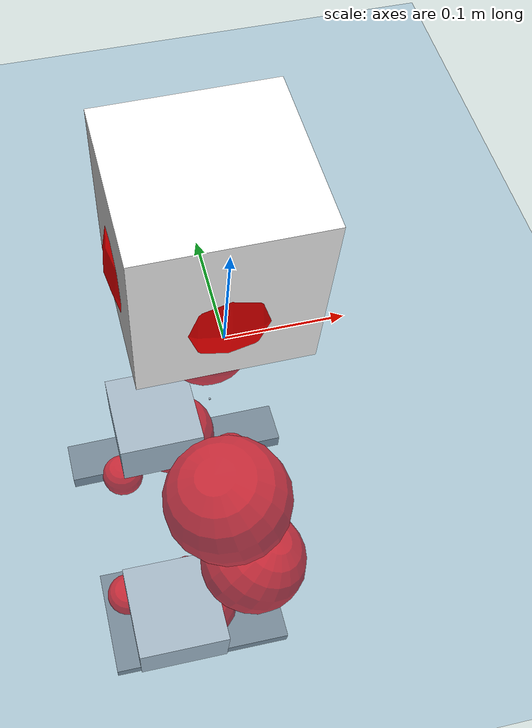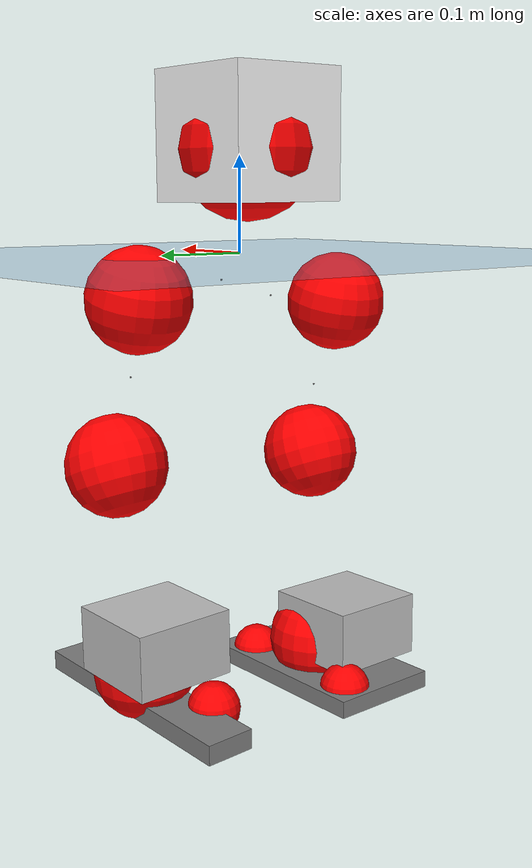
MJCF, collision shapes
<mujoco model="pi_12dof_release_v1">
  <compiler angle="radian" assetdir="assets" balanceinertia="true" inertiafromgeom="false"/>

  <option timestep="0.005" density="1.2" viscosity="2e-05"/>

  <size nkey="1"/>

  <visual>
    <quality shadowsize="8192"/>
    <map shadowclip="0.5"/>
  </visual>

  <default>
    <default class="/">
      <joint armature="0.01" damping="0.01" frictionloss="0.01"/>
      <geom contype="0" conaffinity="0" group="1" solref="-1000 -80"/>
      <site size="0.01 0.005 0.005" group="5"/>
      <general forcelimited="true" biastype="affine" gainprm="20" biasprm="0 -20 -0.5"/>
      <default class="foot">
        <geom size="0.0845 0.036 0.005" type="box" condim="6" group="4" priority="1" friction="0.9 0.2 0.2" solimp="0.015 1 0.005"/>
      </default>
      <default class="reward_collision_sphere">
        <geom group="5" rgba="1 0 0 1"/>
      </default>
    </default>
  </default>

  <asset>
    <texture type="skybox" colorspace="auto" name="//unnamed_texture_0" builtin="gradient" rgb1="0.95 0.95 0.95" rgb2="0.95 0.95 0.95" width="100" height="600"/>
    <texture type="2d" colorspace="auto" name="texplane" builtin="checker" rgb1="0.345 0.575 0.748" rgb2="0.345 0.575 0.748" markrgb="1 1 1" width="512" height="512"/>
    <material name="MatPlane" class="/" texture="texplane" texuniform="true" texrepeat="2 2" specular="0.9"/>
    <mesh name="baselink_1" class="/" file="baselink_1.STL"/>
    <mesh name="r_hip_pitch_link" class="/" file="r_hip_pitch_link.STL"/>
    <mesh name="r_hip_roll_link" class="/" file="r_hip_roll_link.STL"/>
    <mesh name="r_thigh_link" class="/" file="r_thigh_link.STL"/>
    <mesh name="r_calf_link" class="/" file="r_calf_link.STL"/>
    <mesh name="r_ankle_pitch_link" class="/" file="r_ankle_pitch_link.STL"/>
    <mesh name="r_ankle_roll_link" class="/" file="r_ankle_roll_link.STL"/>
    <mesh name="l_hip_pitch_link" class="/" file="l_hip_pitch_link.STL"/>
    <mesh name="l_hip_roll_link" class="/" file="l_hip_roll_link.STL"/>
    <mesh name="l_thigh_link" class="/" file="l_thigh_link.STL"/>
    <mesh name="l_calf_link" class="/" file="l_calf_link.STL"/>
    <mesh name="l_ankle_pitch_link" class="/" file="l_ankle_pitch_link.STL"/>
    <mesh name="l_ankle_roll_link" class="/" file="l_ankle_roll_link.STL"/>
  </asset>

  <worldbody>
    <geom name="floor" class="/" size="100 100 0.125" type="plane" group="0" material="MatPlane"/>
    <light name="toplight_shadow" class="/" pos="0 0 5" dir="0.0990148 0.0990148 -0.990148" type="directional" ambient="0.04 0.04 0.04" diffuse="0.55 0.55 0.55" specular="0.12 0.12 0.12"/>
    <light name="toplight_fill" class="/" pos="0 0 5" dir="0.0990148 0.0990148 -0.990148" type="directional" castshadow="false" ambient="0.04 0.04 0.04" diffuse="0.3 0.3 0.3" specular="0.08 0.08 0.08"/>
    <body name="trunk" pos="-0.0164356 0.00218488 0.0087336" quat="0.999972 -0.0065269 -0.00170357 0.00325406">
      <inertial pos="0.018339 -0.00850459 0.0595375" quat="0.689428 0.0248951 0.0231197 0.723557" mass="5.48166" diaginertia="0.0129438 0.0645123 0.0171072"/>
      <joint name="//unnamed_joint_0" type="free"/>
      <geom name="//unnamed_geom_1" class="/" type="mesh" density="0" rgba="1 1 1 1" mesh="baselink_1"/>
      <geom name="//unnamed_geom_2" class="/" size="0.0662767 0.0662767 0.0662767" pos="0 0 0.110437" type="box" rgba="1 1 1 1"/>
      <geom name="//unnamed_geom_3" class="reward_collision_sphere" size="0.0729043" pos="0 0 0.0966325"/>
      <site name="imu" class="/" pos="0.0122586 -0.0482791 -0.0726642" size="0.0132553"/>
      <camera name="track" class="/" pos="0 -3.03097 0" quat="0.707107 0.707107 0 0" mode="trackcom"/>
      <camera name="ego_camera" class="/" pos="0.081049 0 0.248484" quat="-0.5 -0.5 0.5 0.5"/>
      <body name="r_hip_pitch_link" pos="-0.00116628 -0.029253 -0.0535002" quat="0.992614 -0.00104543 -0.121287 -0.00230149">
        <inertial pos="-0.00403663 -0.0718027 0.00316013" quat="-0.0326145 0.705078 -0.0247244 0.707948" mass="0.895736" diaginertia="0.000118953 0.000649146 0.000413292"/>
        <joint name="r_hip_pitch_joint" class="/" pos="0 0 0" axis="-0.0409385 -0.998967 0.0196975" stiffness="0.0293237" range="-1.56695 1.17114" armature="0.017949" damping="0" frictionloss="0.00524611"/>
        <geom name="//unnamed_geom_4" class="/" type="mesh" density="0" rgba="0.75294 0.75294 0.75294 1" mesh="r_hip_pitch_link"/>
        <geom name="//unnamed_geom_5" class="/" size="0.000662767 0.000662767 0.000662767" type="box" rgba="0.75294 0.75294 0.75294 1"/>
        <body name="r_hip_roll_link" pos="-0.0087905 -0.0885766 -0.00983476" quat="0.999977 -0.000162894 0.00355893 -0.00580806">
          <inertial pos="-0.0136858 0.0112051 -0.0691575" quat="0.70597 -0.0773383 -0.0808234 0.699351" mass="1.06523" diaginertia="0.000502526 0.00248325 0.000584162"/>
          <joint name="r_hip_roll_joint" class="/" pos="0 0 0" axis="-0.998165 -0.0381197 -0.0470442" range="-0.00192701 0.733981" armature="0.0180062" damping="0.0769328" frictionloss="0.00441727"/>
          <geom name="//unnamed_geom_6" class="/" type="mesh" density="0" rgba="0.75294 0.75294 0.75294 1" mesh="r_hip_roll_link"/>
          <geom name="//unnamed_geom_7" class="/" size="0.000662767 0.000662767 0.000662767" type="box" rgba="0.75294 0.75294 0.75294 1"/>
          <geom name="//unnamed_geom_8" class="reward_collision_sphere" size="0.0530213"/>
          <body name="r_thigh_link" pos="-0.00344053 0.0149333 -0.0952292" quat="0.999986 0.00421404 0.000474592 -0.00319675">
            <inertial pos="0.0131661 0.00167139 -0.0768443" quat="0.759483 0.650281 0.0175476 0.00343588" mass="0.250332" diaginertia="0.000164073 0.000516882 0.000211308"/>
            <joint name="r_thigh_joint" class="/" pos="0 0 0" axis="-0.00254204 0.000959053 -0.999996" stiffness="0.0511041" range="-0.0454744 0.388932" armature="0.0194285" damping="0" frictionloss="0.0241973"/>
            <geom name="//unnamed_geom_9" class="/" type="mesh" density="0" rgba="0.75294 0.75294 0.75294 1" mesh="r_thigh_link"/>
            <geom name="//unnamed_geom_10" class="/" size="0.000662767 0.000662767 0.000662767" type="box" rgba="0.75294 0.75294 0.75294 1"/>
            <body name="r_calf_link" pos="-0.00341036 -0.0102371 -0.0818911" quat="0.948407 -0.00260125 0.317002 0.00514491">
              <inertial pos="-0.00960498 0.0123587 -0.097005" quat="0.997751 0.0402293 -0.0415938 0.0338234" mass="1.90526" diaginertia="0.00671967 0.031469 0.00111682"/>
              <joint name="r_calf_joint" class="/" pos="0 0 0" axis="0.0400707 -0.997676 -0.0551098" stiffness="0.068869" range="-1.96877 0.71137" armature="0.016354" damping="0" frictionloss="0.00507554"/>
              <geom name="//unnamed_geom_11" class="/" type="mesh" density="0" rgba="0.75294 0.75294 0.75294 1" mesh="r_calf_link"/>
              <geom name="//unnamed_geom_12" class="/" size="0.000662767 0.000662767 0.000662767" type="box" rgba="0.75294 0.75294 0.75294 1"/>
              <geom name="//unnamed_geom_13" class="reward_collision_sphere" size="0.0530213"/>
              <body name="r_ankle_pitch_link" pos="0.000148473 0.0162309 -0.194222" quat="0.98018 0.000178189 -0.198107 -0.000102182">
                <inertial pos="-0.00473314 0.0176404 0.00269787" quat="-0.0254392 0.68664 0.036236 0.725648" mass="0.394951" diaginertia="0.000520393 0.00213481 0.000556051"/>
                <joint name="r_ankle_pitch_joint" class="/" pos="0 0 0" axis="-0.0587087 -0.997136 -0.0476788" range="-1.46851 0.495424" armature="0.0119266" damping="0.069526" frictionloss="0.00666599"/>
                <geom name="//unnamed_geom_14" class="/" type="mesh" density="0" rgba="0.75294 0.75294 0.75294 1" mesh="r_ankle_pitch_link"/>
                <geom name="//unnamed_geom_15" class="/" size="0.0516958 0.0530213 0.0331383" type="box" rgba="0.75294 0.75294 0.75294 1"/>
                <body name="r_ankle_roll_link" pos="0.0805136 0.0169738 0.00674505" quat="1 5.00158e-05 8.40409e-05 -0.000481534">
                  <inertial pos="-0.0258241 -0.00170132 -0.0206543" quat="0.53287 0.468754 0.473606 0.521553" mass="1.24503" diaginertia="0.00166822 0.008358 0.00164852"/>
                  <joint name="r_ankle_roll_joint" class="/" pos="0 0 0" axis="-0.996884 -0.0105971 -0.078172" range="0.145958 0.11257" armature="0.00397855" damping="0.0224254" frictionloss="0.013345"/>
                  <geom name="//unnamed_geom_16" class="/" type="mesh" density="0" rgba="0.75294 0.75294 0.75294 1" mesh="r_ankle_roll_link"/>
                  <geom name="//unnamed_geom_17" class="/" type="mesh" rgba="0.75294 0.75294 0.75294 1" mesh="r_ankle_roll_link"/>
                  <geom name="right_foot" class="foot" size="0.105261 0.0613182 0.00901824" pos="-0.0551133 0 -0.0607404"/>
                  <geom name="//unnamed_geom_19" class="reward_collision_sphere" size="0.0530213" pos="-0.0540326 0 -0.0276093"/>
                  <geom name="//unnamed_geom_20" class="reward_collision_sphere" size="0.0265107" pos="0.0162098 0.0303097 -0.0552186"/>
                  <geom name="//unnamed_geom_21" class="reward_collision_sphere" size="0.0265107" pos="-0.129678 0.0303097 -0.0552186"/>
                  <site name="right_foot" class="foot" pos="-0.0551133 0 -0.0607404" size="0.0132553"/>
                </body>
              </body>
            </body>
          </body>
        </body>
      </body>
      <body name="l_hip_pitch_link" pos="0.000342249 0.0352721 -0.0334219" quat="0.992188 -0.00011079 -0.124751 0.000394465">
        <inertial pos="-0.00650361 0.0669857 0.0117019" quat="-0.0420562 0.752223 0.0742352 0.653361" mass="0.689577" diaginertia="0.000171813 0.000798629 0.000387275"/>
        <joint name="l_hip_pitch_joint" class="/" pos="0 0 0" axis="-0.0741583 0.996719 -0.0324283" stiffness="0.0370505" range="-1.38805 1.76909" armature="0.0139048" damping="0" frictionloss="0.0136362"/>
        <geom name="//unnamed_geom_22" class="/" type="mesh" density="0" rgba="0.75294 0.75294 0.75294 1" mesh="l_hip_pitch_link"/>
        <geom name="//unnamed_geom_23" class="/" size="0.000662767 0.000662767 0.000662767" type="box" rgba="0.75294 0.75294 0.75294 1"/>
        <body name="l_hip_roll_link" pos="-0.000861099 0.0999968 -0.0142559" quat="0.999999 0.000200484 -0.00155187 -0.000695244">
          <inertial pos="-0.000886176 -0.00017206 -0.0880962" quat="0.701064 -0.0403292 -0.0850617 0.706857" mass="0.675069" diaginertia="0.000446134 0.00195037 0.000514795"/>
          <joint name="l_hip_roll_joint" class="/" pos="0 0 0" axis="-0.999405 -0.028459 0.0194787" stiffness="0.0835696" range="-0.433565 -0.13931" armature="0.0188314" damping="0.0013122" frictionloss="0.0179083"/>
          <geom name="//unnamed_geom_24" class="/" type="mesh" density="0" rgba="0.75294 0.75294 0.75294 1" mesh="l_hip_roll_link"/>
          <geom name="//unnamed_geom_25" class="/" size="0.000662767 0.000662767 0.000662767" type="box" rgba="0.75294 0.75294 0.75294 1"/>
          <geom name="//unnamed_geom_26" class="reward_collision_sphere" size="0.0530213"/>
          <body name="l_thigh_link" pos="-0.000392202 -0.00182943 -0.0805503" quat="0.999997 -0.00140449 -0.00102325 0.00162464">
            <inertial pos="0.00707182 -0.017753 -0.0678666" quat="0.665829 0.744709 -0.0203745 -0.0408038" mass="0.239366" diaginertia="0.000188826 0.000675976 0.00031924"/>
            <joint name="l_thigh_joint" class="/" pos="0 0 0" axis="-0.033997 0.00958029 -0.999376" range="-0.636743 0.066748" armature="0.00757608" damping="0.0800089" frictionloss="0.00704073"/>
            <geom name="//unnamed_geom_27" class="/" type="mesh" density="0" rgba="0.75294 0.75294 0.75294 1" mesh="l_thigh_link"/>
            <geom name="//unnamed_geom_28" class="/" size="0.000662767 0.000662767 0.000662767" type="box" rgba="0.75294 0.75294 0.75294 1"/>
            <body name="l_calf_link" pos="-0.00702313 0.00925002 -0.0928879" quat="0.948186 -0.00624437 0.317627 -0.00420127">
              <inertial pos="-0.0155052 -0.00623765 -0.0805455" quat="0.998129 0.0341879 0.0436654 0.0257336" mass="1.92844" diaginertia="0.00526909 0.0286079 0.000909094"/>
              <joint name="l_calf_joint" class="/" pos="0 0 0" axis="-0.0311361 0.998871 0.0358895" stiffness="0.0275437" range="-0.579442 1.85467" armature="0.00943999" damping="0" frictionloss="0.0222653"/>
              <geom name="//unnamed_geom_29" class="/" type="mesh" density="0" rgba="0.75294 0.75294 0.75294 1" mesh="l_calf_link"/>
              <geom name="//unnamed_geom_30" class="/" size="0.000662767 0.000662767 0.000662767" type="box" rgba="0.75294 0.75294 0.75294 1"/>
              <geom name="//unnamed_geom_31" class="reward_collision_sphere" size="0.0530213"/>
              <body name="l_ankle_pitch_link" pos="0.00570772 0.00223264 -0.177403" quat="0.98015 9.39221e-05 -0.198257 0.000482167">
                <inertial pos="0.00838605 -0.00122053 -0.00134764" quat="-0.00197665 0.705968 0.00148452 0.70824" mass="0.482053" diaginertia="0.000478745 0.00153664 0.000606327"/>
                <joint name="l_ankle_pitch_joint" class="/" pos="0 0 0" axis="0.000974261 0.999999 0.000851949" stiffness="0.0500567" range="-0.541189 1.25679" armature="0.0126132" damping="0.0327097" frictionloss="0.00774429"/>
                <geom name="//unnamed_geom_32" class="/" type="mesh" density="0" rgba="0.75294 0.75294 0.75294 1" mesh="l_ankle_pitch_link"/>
                <geom name="//unnamed_geom_33" class="/" size="0.0516958 0.0530213 0.0331383" type="box" rgba="0.75294 0.75294 0.75294 1"/>
                <body name="l_ankle_roll_link" pos="0.0775369 -0.00114463 -0.00892378" quat="0.999999 0.000369023 0.000123203 0.00100979">
                  <inertial pos="-0.0138442 -0.00299083 -0.0192937" quat="0.577904 0.389506 0.428335 0.575188" mass="1.23247" diaginertia="0.00150193 0.00808447 0.00117828"/>
                  <joint name="l_ankle_roll_joint" class="/" pos="0 0 0" axis="-0.997018 -0.0572367 -0.0517535" stiffness="0.0690902" range="-0.171997 -0.018181" armature="0.0179956" damping="0" frictionloss="0.0184072"/>
                  <geom name="//unnamed_geom_34" class="/" type="mesh" density="0" rgba="0.75294 0.75294 0.75294 1" mesh="l_ankle_roll_link"/>
                  <geom name="//unnamed_geom_35" class="/" type="mesh" rgba="0.75294 0.75294 0.75294 1" mesh="l_ankle_roll_link"/>
                  <geom name="left_foot" class="foot" size="0.13864 0.0254001 0.00999334" pos="-0.0551133 0 -0.0607404"/>
                  <geom name="//unnamed_geom_37" class="reward_collision_sphere" size="0.0530213" pos="-0.0540326 0 -0.0276093"/>
                  <geom name="//unnamed_geom_38" class="reward_collision_sphere" size="0.0265107" pos="0.0162098 -0.0303097 -0.0552186"/>
                  <geom name="//unnamed_geom_39" class="reward_collision_sphere" size="0.0265107" pos="-0.129678 -0.0303097 -0.0552186"/>
                  <site name="left_foot" class="foot" pos="-0.0551133 0 -0.0607404" size="0.0132553"/>
                </body>
              </body>
            </body>
          </body>
        </body>
      </body>
    </body>
  </worldbody>

  <contact>
    <pair class="/" geom1="floor" geom2="right_foot" name="//unnamed_contact_1"/>
    <pair class="/" geom1="floor" geom2="left_foot" name="//unnamed_contact_0"/>
  </contact>

  <actuator>
    <general name="r_hip_pitch_joint" class="/" joint="r_hip_pitch_joint" forcerange="-28.5695 28.5695" gainprm="25.6507" biasprm="0 -25.6507 -0.531571"/>
    <general name="r_hip_roll_joint" class="/" joint="r_hip_roll_joint" forcerange="-17.0114 17.0114" gainprm="25.6507" biasprm="0 -25.6507 -0.531571"/>
    <general name="r_thigh_joint" class="/" joint="r_thigh_joint" forcerange="-32.1641 32.1641" gainprm="25.6507" biasprm="0 -25.6507 -0.531571"/>
    <general name="r_calf_joint" class="/" joint="r_calf_joint" forcerange="-10.9635 10.9635" gainprm="25.6507" biasprm="0 -25.6507 -0.531571"/>
    <general name="r_ankle_pitch_joint" class="/" joint="r_ankle_pitch_joint" forcerange="-23.0318 23.0318" gainprm="25.6507" biasprm="0 -25.6507 -0.531571"/>
    <general name="r_ankle_roll_joint" class="/" joint="r_ankle_roll_joint" forcerange="-43.0147 43.0147" gainprm="25.6507" biasprm="0 -25.6507 -0.531571"/>
    <general name="l_hip_pitch_joint" class="/" joint="l_hip_pitch_joint" forcerange="-27.4229 27.4229" gainprm="25.6507" biasprm="0 -25.6507 -0.531571"/>
    <general name="l_hip_roll_joint" class="/" joint="l_hip_roll_joint" forcerange="-37.7269 37.7269" gainprm="25.6507" biasprm="0 -25.6507 -0.531571"/>
    <general name="l_thigh_joint" class="/" joint="l_thigh_joint" forcerange="-31.3391 31.3391" gainprm="25.6507" biasprm="0 -25.6507 -0.531571"/>
    <general name="l_calf_joint" class="/" joint="l_calf_joint" forcerange="-29.4002 29.4002" gainprm="25.6507" biasprm="0 -25.6507 -0.531571"/>
    <general name="l_ankle_pitch_joint" class="/" joint="l_ankle_pitch_joint" forcerange="-18.0639 18.0639" gainprm="25.6507" biasprm="0 -25.6507 -0.531571"/>
    <general name="l_ankle_roll_joint" class="/" joint="l_ankle_roll_joint" forcerange="-27.936 27.936" gainprm="25.6507" biasprm="0 -25.6507 -0.531571"/>
  </actuator>

  <sensor>
    <gyro site="imu" name="imu_angular_velocity"/>
    <velocimeter site="imu" name="imu_linear_velocity"/>
    <framelinvel objtype="site" objname="left_foot" name="left_foot_global_linear_velocity"/>
    <framelinvel objtype="site" objname="right_foot" name="right_foot_global_linear_velocity"/>
  </sensor>

  <keyframe>
    <key name="home" qpos="0 0 0.291 1 0 0 0 0.4 0 0 -0.8 0.4 0 -0.4 0 0 0.8 -0.4 0"/>
  </keyframe>
</mujoco>
